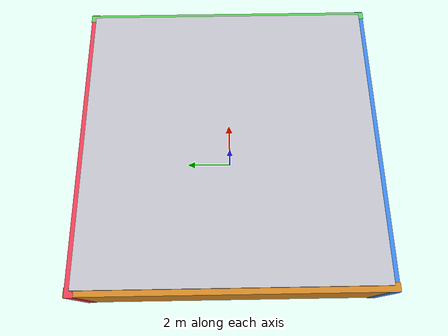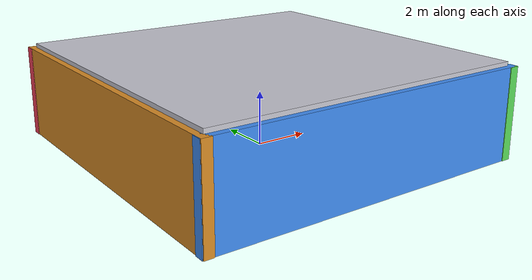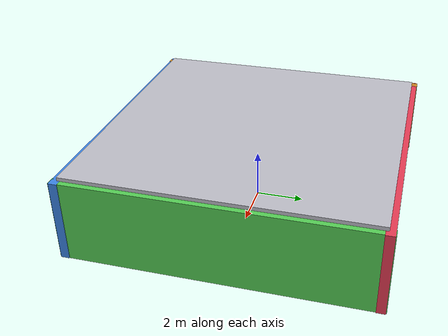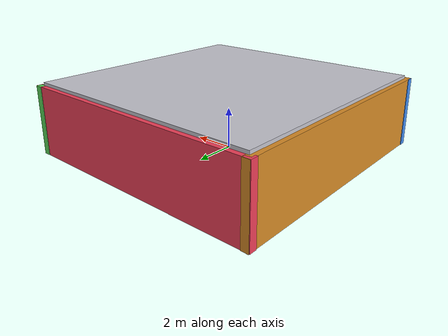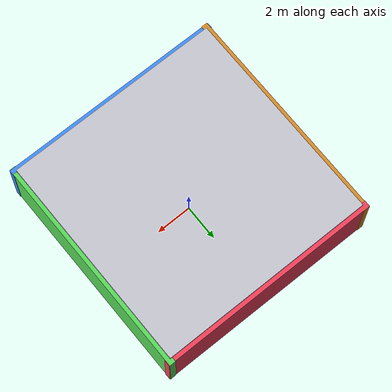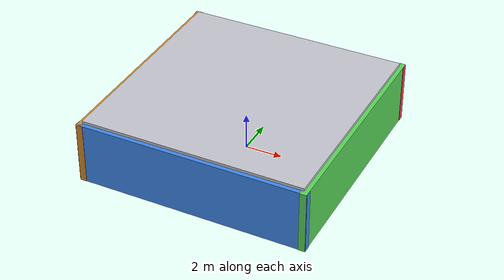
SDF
<?xml version="1.0"?>
<!--
  VO + avoidance demo world.
  Spawn: (0.0, -3.05), forward +X. Center of open lane, >=1 m from walls. First box west face ~x=2.96.
-->
<sdf version="1.9">
  <world name="default">
    <gravity>0 0 -9.8</gravity>

    <plugin
      filename="gz-sim-physics-system"
      name="gz::sim::systems::Physics"/>
    <plugin
      filename="gz-sim-user-commands-system"
      name="gz::sim::systems::UserCommands"/>
    <plugin
      filename="gz-sim-scene-broadcaster-system"
      name="gz::sim::systems::SceneBroadcaster"/>
    <plugin
      filename="gz-sim-sensors-system"
      name="gz::sim::systems::Sensors">
      <render_engine>ogre2</render_engine>
    </plugin>

    <light type="directional" name="sun">
      <cast_shadows>true</cast_shadows>
      <pose>0 0 14 0 0 0</pose>
      <diffuse>0.95 0.95 0.92 1</diffuse>
      <specular>0.3 0.3 0.28 1</specular>
      <attenuation>
        <range>1000</range>
        <constant>0.85</constant>
        <linear>0.01</linear>
        <quadratic>0.001</quadratic>
      </attenuation>
      <direction>-0.25 0.2 -1</direction>
    </light>

    <!-- Coarse checker floor: four large quadrants (impossible to miss from the air). -->
    <model name="floor_tile_nw">
      <static>true</static>
      <pose>-3.0 -3.0 0.02 0 0 0</pose>
      <link name="link">
        <collision name="c"><geometry><box><size>6.1 6.1 0.04</size></box></geometry></collision>
        <visual name="v">
          <geometry><box><size>6.1 6.1 0.04</size></box></geometry>
          <material><ambient>0.92 0.92 0.95 1</ambient><diffuse>0.92 0.92 0.95 1</diffuse></material>
        </visual>
      </link>
    </model>
    <model name="floor_tile_ne">
      <static>true</static>
      <pose>3.0 -3.0 0.02 0 0 0</pose>
      <link name="link">
        <collision name="c"><geometry><box><size>6.1 6.1 0.04</size></box></geometry></collision>
        <visual name="v">
          <geometry><box><size>6.1 6.1 0.04</size></box></geometry>
          <material><ambient>0.12 0.12 0.14 1</ambient><diffuse>0.12 0.12 0.14 1</diffuse></material>
        </visual>
      </link>
    </model>
    <model name="floor_tile_sw">
      <static>true</static>
      <pose>-3.0 3.0 0.02 0 0 0</pose>
      <link name="link">
        <collision name="c"><geometry><box><size>6.1 6.1 0.04</size></box></geometry></collision>
        <visual name="v">
          <geometry><box><size>6.1 6.1 0.04</size></box></geometry>
          <material><ambient>0.12 0.12 0.14 1</ambient><diffuse>0.12 0.12 0.14 1</diffuse></material>
        </visual>
      </link>
    </model>
    <model name="floor_tile_se">
      <static>true</static>
      <pose>3.0 3.0 0.02 0 0 0</pose>
      <link name="link">
        <collision name="c"><geometry><box><size>6.1 6.1 0.04</size></box></geometry></collision>
        <visual name="v">
          <geometry><box><size>6.1 6.1 0.04</size></box></geometry>
          <material><ambient>0.92 0.92 0.95 1</ambient><diffuse>0.92 0.92 0.95 1</diffuse></material>
        </visual>
      </link>
    </model>

    <!-- Closed room (~12 m usable), four saturated walls -->
    <model name="wall_north">
      <static>true</static>
      <pose>0 6.05 1.65 0 0 0</pose>
      <link name="link">
        <collision name="c"><geometry><box><size>12.5 0.35 3.35</size></box></geometry></collision>
        <visual name="v">
          <geometry><box><size>12.5 0.35 3.35</size></box></geometry>
          <material><ambient>0.95 0.25 0.35 1</ambient><diffuse>0.95 0.25 0.35 1</diffuse></material>
        </visual>
      </link>
    </model>
    <model name="wall_south">
      <static>true</static>
      <pose>0 -6.05 1.65 0 0 0</pose>
      <link name="link">
        <collision name="c"><geometry><box><size>12.5 0.35 3.35</size></box></geometry></collision>
        <visual name="v">
          <geometry><box><size>12.5 0.35 3.35</size></box></geometry>
          <material><ambient>0.25 0.55 0.95 1</ambient><diffuse>0.25 0.55 0.95 1</diffuse></material>
        </visual>
      </link>
    </model>
    <model name="wall_east">
      <static>true</static>
      <pose>6.05 0 1.65 0 0 0</pose>
      <link name="link">
        <collision name="c"><geometry><box><size>0.35 12.5 3.35</size></box></geometry></collision>
        <visual name="v">
          <geometry><box><size>0.35 12.5 3.35</size></box></geometry>
          <material><ambient>0.35 0.85 0.35 1</ambient><diffuse>0.35 0.85 0.35 1</diffuse></material>
        </visual>
      </link>
    </model>
    <model name="wall_west">
      <static>true</static>
      <pose>-6.05 0 1.65 0 0 0</pose>
      <link name="link">
        <collision name="c"><geometry><box><size>0.35 12.5 3.35</size></box></geometry></collision>
        <visual name="v">
          <geometry><box><size>0.35 12.5 3.35</size></box></geometry>
          <material><ambient>0.85 0.55 0.15 1</ambient><diffuse>0.85 0.55 0.15 1</diffuse></material>
        </visual>
      </link>
    </model>

    <model name="room_ceiling">
      <static>true</static>
      <pose>0 0 3.35 0 0 0</pose>
      <link name="link">
        <collision name="c"><geometry><box><size>12.0 12.0 0.25</size></box></geometry></collision>
        <visual name="v">
          <geometry><box><size>12.0 12.0 0.25</size></box></geometry>
          <material><ambient>0.78 0.78 0.82 1</ambient><diffuse>0.78 0.78 0.82 1</diffuse></material>
        </visual>
      </link>
    </model>

    <!-- RTAB visual feature — corner decor only (not in +X demo lane y≈-3) -->
    <model name="ob_box_a">
      <static>true</static>
      <pose>4.8 4.2 0.55 0 0 0.2</pose>
      <link name="link">
        <collision name="c"><geometry><box><size>1.0 0.75 0.9</size></box></geometry></collision>
        <visual name="v">
          <geometry><box><size>1.0 0.75 0.9</size></box></geometry>
          <material><ambient>0.9 0.2 0.75 1</ambient><diffuse>0.9 0.2 0.75 1</diffuse></material>
        </visual>
      </link>
    </model>
    <model name="ob_box_b">
      <static>true</static>
      <pose>-5.0 4.2 0.45 0 0 -0.15</pose>
      <link name="link">
        <collision name="c"><geometry><box><size>0.85 0.95 0.7</size></box></geometry></collision>
        <visual name="v">
          <geometry><box><size>0.85 0.95 0.7</size></box></geometry>
          <material><ambient>0.15 0.85 0.85 1</ambient><diffuse>0.15 0.85 0.85 1</diffuse></material>
        </visual>
      </link>
    </model>
    <model name="ob_box_c">
      <static>true</static>
      <pose>-5.2 5.2 0.65 0 0 0.5</pose>
      <link name="link">
        <collision name="c"><geometry><box><size>1.4 0.5 1.1</size></box></geometry></collision>
        <visual name="v">
          <geometry><box><size>1.4 0.5 1.1</size></box></geometry>
          <material><ambient>0.95 0.85 0.20 1</ambient><diffuse>0.95 0.85 0.20 1</diffuse></material>
        </visual>
      </link>
    </model>
    <!-- RTAB visual feature — west wall panel (outside corridor) -->
    <model name="partition_short">
      <static>true</static>
      <pose>-5.15 2.8 1.0 0 0 0</pose>
      <link name="link">
        <collision name="c"><geometry><box><size>0.22 2.2 2.0</size></box></geometry></collision>
        <visual name="v">
          <geometry><box><size>0.22 2.2 2.0</size></box></geometry>
          <material><ambient>0.55 0.45 0.35 1</ambient><diffuse>0.55 0.45 0.35 1</diffuse></material>
        </visual>
      </link>
    </model>

    <!-- clear spawn zone -->
    <!-- Spawn at x=0, y=-3.05: >=5 m from east/west walls, >=2.8 m from south wall. -->

    <!-- main demo corridor -->
    <!-- Centerline y=-3.05; obstacle gaps >=1.0 m between inner faces. -->

    <!-- RTAB visual feature — forward calibration wall (visual only, no collision; faces spawn +X) -->
    <model name="vo_calib_wall">
      <static>true</static>
      <pose>0.15 -3.05 1.05 0 0 0</pose>
      <link name="link">
        <visual name="t00"><pose>-0.75 0.75 0 0 0 0</pose><geometry><box><size>0.48 0.48 0.04</size></box></geometry>
          <material><ambient>0.05 0.05 0.05 1</ambient><diffuse>0.05 0.05 0.05 1</diffuse></material></visual>
        <visual name="t01"><pose>-0.25 0.75 0 0 0 0</pose><geometry><box><size>0.48 0.48 0.04</size></box></geometry>
          <material><ambient>0.92 0.92 0.95 1</ambient><diffuse>0.92 0.92 0.95 1</diffuse></material></visual>
        <visual name="t02"><pose>0.25 0.75 0 0 0 0</pose><geometry><box><size>0.48 0.48 0.04</size></box></geometry>
          <material><ambient>0.05 0.05 0.05 1</ambient><diffuse>0.05 0.05 0.05 1</diffuse></material></visual>
        <visual name="t03"><pose>0.75 0.75 0 0 0 0</pose><geometry><box><size>0.48 0.48 0.04</size></box></geometry>
          <material><ambient>0.92 0.92 0.95 1</ambient><diffuse>0.92 0.92 0.95 1</diffuse></material></visual>
        <visual name="t10"><pose>-0.75 0.25 0 0 0 0</pose><geometry><box><size>0.48 0.48 0.04</size></box></geometry>
          <material><ambient>0.92 0.92 0.95 1</ambient><diffuse>0.92 0.92 0.95 1</diffuse></material></visual>
        <visual name="t11"><pose>-0.25 0.25 0 0 0 0</pose><geometry><box><size>0.48 0.48 0.04</size></box></geometry>
          <material><ambient>0.95 0.25 0.35 1</ambient><diffuse>0.95 0.25 0.35 1</diffuse></material></visual>
        <visual name="t12"><pose>0.25 0.25 0 0 0 0</pose><geometry><box><size>0.48 0.48 0.04</size></box></geometry>
          <material><ambient>0.35 0.85 0.35 1</ambient><diffuse>0.35 0.85 0.35 1</diffuse></material></visual>
        <visual name="t13"><pose>0.75 0.25 0 0 0 0</pose><geometry><box><size>0.48 0.48 0.04</size></box></geometry>
          <material><ambient>0.05 0.05 0.05 1</ambient><diffuse>0.05 0.05 0.05 1</diffuse></material></visual>
        <visual name="t20"><pose>-0.75 -0.25 0 0 0 0</pose><geometry><box><size>0.48 0.48 0.04</size></box></geometry>
          <material><ambient>0.05 0.05 0.05 1</ambient><diffuse>0.05 0.05 0.05 1</diffuse></material></visual>
        <visual name="t21"><pose>-0.25 -0.25 0 0 0 0</pose><geometry><box><size>0.48 0.48 0.04</size></box></geometry>
          <material><ambient>0.25 0.55 0.95 1</ambient><diffuse>0.25 0.55 0.95 1</diffuse></material></visual>
        <visual name="t22"><pose>0.25 -0.25 0 0 0 0</pose><geometry><box><size>0.48 0.48 0.04</size></box></geometry>
          <material><ambient>0.92 0.92 0.95 1</ambient><diffuse>0.92 0.92 0.95 1</diffuse></material></visual>
        <visual name="t23"><pose>0.75 -0.25 0 0 0 0</pose><geometry><box><size>0.48 0.48 0.04</size></box></geometry>
          <material><ambient>0.85 0.55 0.15 1</ambient><diffuse>0.85 0.55 0.15 1</diffuse></material></visual>
        <visual name="t30"><pose>-0.75 -0.75 0 0 0 0</pose><geometry><box><size>0.48 0.48 0.04</size></box></geometry>
          <material><ambient>0.92 0.92 0.95 1</ambient><diffuse>0.92 0.92 0.95 1</diffuse></material></visual>
        <visual name="t31"><pose>-0.25 -0.75 0 0 0 0</pose><geometry><box><size>0.48 0.48 0.04</size></box></geometry>
          <material><ambient>0.05 0.05 0.05 1</ambient><diffuse>0.05 0.05 0.05 1</diffuse></material></visual>
        <visual name="t32"><pose>0.25 -0.75 0 0 0 0</pose><geometry><box><size>0.48 0.48 0.04</size></box></geometry>
          <material><ambient>0.05 0.05 0.05 1</ambient><diffuse>0.05 0.05 0.05 1</diffuse></material></visual>
        <visual name="t33"><pose>0.75 -0.75 0 0 0 0</pose><geometry><box><size>0.48 0.48 0.04</size></box></geometry>
          <material><ambient>0.92 0.92 0.95 1</ambient><diffuse>0.92 0.92 0.95 1</diffuse></material></visual>
      </link>
    </model>

    <!-- RTAB visual feature — side panels (visual only, outside corridor) -->
    <model name="vo_side_panel_L">
      <static>true</static>
      <pose>-1.2 -1.55 0.85 0 0 0.35</pose>
      <link name="link">
        <visual name="v"><geometry><box><size>0.04 0.35 0.9</size></box></geometry>
          <material><ambient>0.9 0.15 0.15 1</ambient><diffuse>0.9 0.15 0.15 1</diffuse></material></visual>
      </link>
    </model>
    <model name="vo_side_panel_R">
      <static>true</static>
      <pose>-1.2 -4.55 0.85 0 0 -0.35</pose>
      <link name="link">
        <visual name="v"><geometry><box><size>0.04 0.35 0.9</size></box></geometry>
          <material><ambient>0.15 0.35 0.92 1</ambient><diffuse>0.15 0.35 0.92 1</diffuse></material></visual>
      </link>
    </model>

    <!-- RTAB visual feature — patterned board on north wall (away from drive lane) -->
    <model name="vo_taglike">
      <static>true</static>
      <pose>4.5 4.85 0.95 0 0 0.2</pose>
      <link name="link">
        <collision name="outer"><geometry><box><size>0.04 0.5 0.5</size></box></geometry></collision>
        <visual name="outer"><geometry><box><size>0.04 0.5 0.5</size></box></geometry>
          <material><ambient>0.95 0.95 0.95 1</ambient><diffuse>0.95 0.95 0.95 1</diffuse></material></visual>
        <visual name="mid"><pose>0.015 0 0 0 0 0</pose><geometry><box><size>0.05 0.34 0.34</size></box></geometry>
          <material><ambient>0.08 0.08 0.08 1</ambient><diffuse>0.08 0.08 0.08 1</diffuse></material></visual>
        <visual name="inner"><pose>0.03 0 0 0 0 0</pose><geometry><box><size>0.06 0.18 0.18</size></box></geometry>
          <material><ambient>0.9 0.15 0.15 1</ambient><diffuse>0.9 0.15 0.15 1</diffuse></material></visual>
      </link>
    </model>

    <!-- RTAB visual feature — east wall strips only (not in navigation corridor) -->
    <model name="vo_strip_mid">
      <static>true</static>
      <pose>5.42 2.2 1.05 0 0 1.571</pose>
      <link name="link">
        <collision name="c"><geometry><box><size>0.10 0.45 2.0</size></box></geometry></collision>
        <visual name="v"><geometry><box><size>0.10 0.45 2.0</size></box></geometry>
          <material><ambient>0.05 0.05 0.05 1</ambient><diffuse>0.05 0.05 0.05 1</diffuse></material></visual>
      </link>
    </model>
    <model name="vo_strip_side">
      <static>true</static>
      <pose>5.42 -5.15 1.05 0 0 1.571</pose>
      <link name="link">
        <collision name="c"><geometry><box><size>0.10 0.45 2.0</size></box></geometry></collision>
        <visual name="v"><geometry><box><size>0.10 0.45 2.0</size></box></geometry>
          <material><ambient>0.95 0.95 0.95 1</ambient><diffuse>0.95 0.95 0.95 1</diffuse></material></visual>
      </link>
    </model>

    <!-- avoidance — 1st north; west face x=2.96 (~3.5 m from spawn) -->
    <model name="demo_avoid_box_L">
      <static>true</static>
      <pose>3.20 -1.95 0.38 0 0 0</pose>
      <link name="link">
        <collision name="c"><geometry><box><size>0.48 0.48 0.48</size></box></geometry></collision>
        <visual name="v"><geometry><box><size>0.48 0.48 0.48</size></box></geometry>
          <material><ambient>0.88 0.35 0.12 1</ambient><diffuse>0.88 0.35 0.12 1</diffuse></material></visual>
      </link>
    </model>

    <!-- avoidance — 2nd south; staggered +1.6 m in X from box_L -->
    <model name="demo_avoid_box_R">
      <static>true</static>
      <pose>4.80 -4.15 0.38 0 0 0</pose>
      <link name="link">
        <collision name="c"><geometry><box><size>0.48 0.48 0.48</size></box></geometry></collision>
        <visual name="v"><geometry><box><size>0.48 0.48 0.48</size></box></geometry>
          <material><ambient>0.15 0.35 0.92 1</ambient><diffuse>0.15 0.35 0.92 1</diffuse></material></visual>
      </link>
    </model>

    <!-- avoidance — 3rd north; +X pair with >=1.5 m straight gap from box_L east face -->
    <model name="demo_avoid_box_C">
      <static>true</static>
      <pose>5.30 -1.95 0.38 0 0 0</pose>
      <link name="link">
        <collision name="c"><geometry><box><size>0.48 0.48 0.48</size></box></geometry></collision>
        <visual name="v"><geometry><box><size>0.48 0.48 0.48</size></box></geometry>
          <material><ambient>0.12 0.55 0.88 1</ambient><diffuse>0.12 0.55 0.88 1</diffuse></material></visual>
      </link>
    </model>

    <!-- avoidance — 4th south; between L and R in X (no same-x pinch) -->
    <model name="demo_avoid_box_D">
      <static>true</static>
      <pose>4.00 -4.15 0.38 0 0 0</pose>
      <link name="link">
        <collision name="c"><geometry><box><size>0.48 0.48 0.48</size></box></geometry></collision>
        <visual name="v"><geometry><box><size>0.48 0.48 0.48</size></box></geometry>
          <material><ambient>0.45 0.25 0.75 1</ambient><diffuse>0.45 0.25 0.75 1</diffuse></material></visual>
      </link>
    </model>
  </world>
</sdf>
